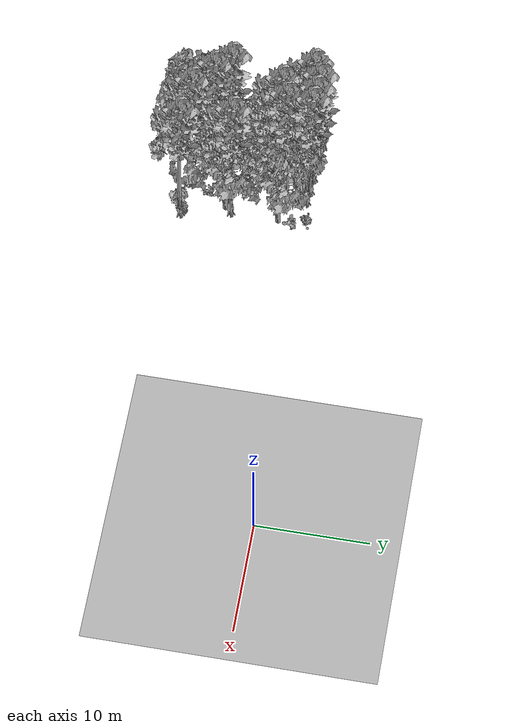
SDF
<sdf version="1.7">
 <world name="default">
  <model name="ground_plane">
   <static>1</static>
   <link name="link">
    <collision name="collision">
     <pose>-50 0 0 0 -0 0</pose>
     <geometry><plane><normal>0 0 1</normal><size>80 80</size></plane></geometry>
     <surface><contact><ode><min_depth>0.01</min_depth><max_vel>0</max_vel></ode></contact></surface>
    </collision>
    <visual name="grass">
     <cast_shadows>0</cast_shadows>
     <geometry>
      <mesh>
       <scale>0.46714285714285714 0.46714285714285714 0.1</scale>
       <uri>file://grass_plane/meshes/grass_plane.dae</uri>
      </mesh>
     </geometry>
    </visual>
   </link>
  </model>
  <model name="Tree 24">
   <static>1</static>
   <pose>-32.78907897571921 -0.9774051345075847 0 1.57079 -0 0</pose>
   <link name="link">
    <collision name="collision">
     <geometry><mesh><scale>3.5 5 3.5</scale><uri>model://tree_9/meshes/tree_9.obj</uri></mesh></geometry>
    </collision>
    <visual name="visual">
     <geometry><mesh><scale>3.5 5 3.5</scale><uri>model://tree_9/meshes/tree_9.obj</uri></mesh></geometry>
    </visual>
   </link>
  </model>
  <model name="Tree 53">
   <static>1</static>
   <pose>-32.948431894712336 -3.2336883667602123 0 1.57079 -0 0</pose>
   <link name="link">
    <collision name="collision">
     <geometry><mesh><scale>3.5 5 3.5</scale><uri>model://tree_9/meshes/tree_9.obj</uri></mesh></geometry>
    </collision>
    <visual name="visual">
     <geometry><mesh><scale>3.5 5 3.5</scale><uri>model://tree_9/meshes/tree_9.obj</uri></mesh></geometry>
    </visual>
   </link>
  </model>
  <model name="Tree 88">
   <static>1</static>
   <pose>-34.96741595532637 -9.925685961240866 0 1.57079 -0 0</pose>
   <link name="link">
    <collision name="collision">
     <geometry><mesh><scale>3.5 5 3.5</scale><uri>model://tree_9/meshes/tree_9.obj</uri></mesh></geometry>
    </collision>
    <visual name="visual">
     <geometry><mesh><scale>3.5 5 3.5</scale><uri>model://tree_9/meshes/tree_9.obj</uri></mesh></geometry>
    </visual>
   </link>
  </model>
  <model name="Tree 96">
   <static>1</static>
   <pose>-36.615596813734214 -1.460859834801873 0 1.57079 -0 0</pose>
   <link name="link">
    <collision name="collision">
     <geometry><mesh><scale>3.5 5 3.5</scale><uri>model://tree_9/meshes/tree_9.obj</uri></mesh></geometry>
    </collision>
    <visual name="visual">
     <geometry><mesh><scale>3.5 5 3.5</scale><uri>model://tree_9/meshes/tree_9.obj</uri></mesh></geometry>
    </visual>
   </link>
  </model>
  <model name="Tree 98">
   <static>1</static>
   <pose>-30.809204679955414 -8.049956116019779 0 1.57079 -0 0</pose>
   <link name="link">
    <collision name="collision">
     <geometry><mesh><scale>3.5 5 3.5</scale><uri>model://tree_2/meshes/tree_2.obj</uri></mesh></geometry>
    </collision>
    <visual name="visual">
     <geometry><mesh><scale>3.5 5 3.5</scale><uri>model://tree_2/meshes/tree_2.obj</uri></mesh></geometry>
    </visual>
   </link>
  </model>
  <model name="Tree 141">
   <static>1</static>
   <pose>-30.249612718079163 -3.16590466005146 0 1.57079 -0 0</pose>
   <link name="link">
    <collision name="collision">
     <geometry><mesh><scale>3.5 5 3.5</scale><uri>model://tree_2/meshes/tree_2.obj</uri></mesh></geometry>
    </collision>
    <visual name="visual">
     <geometry><mesh><scale>3.5 5 3.5</scale><uri>model://tree_2/meshes/tree_2.obj</uri></mesh></geometry>
    </visual>
   </link>
  </model>
  <model name="Tree 225">
   <static>1</static>
   <pose>-30.596620672319034 -7.553012206818281 0 1.57079 -0 0</pose>
   <link name="link">
    <collision name="collision">
     <geometry><mesh><scale>3.5 5 3.5</scale><uri>model://tree_9/meshes/tree_9.obj</uri></mesh></geometry>
    </collision>
    <visual name="visual">
     <geometry><mesh><scale>3.5 5 3.5</scale><uri>model://tree_9/meshes/tree_9.obj</uri></mesh></geometry>
    </visual>
   </link>
  </model>
  <model name="Tree 228">
   <static>1</static>
   <pose>-34.61759037420846 -4.364636212676402 0 1.57079 -0 0</pose>
   <link name="link">
    <collision name="collision">
     <geometry><mesh><scale>3.5 5 3.5</scale><uri>model://tree_2/meshes/tree_2.obj</uri></mesh></geometry>
    </collision>
    <visual name="visual">
     <geometry><mesh><scale>3.5 5 3.5</scale><uri>model://tree_2/meshes/tree_2.obj</uri></mesh></geometry>
    </visual>
   </link>
  </model>
  <model name="Tree 252">
   <static>1</static>
   <pose>-37.66335102691127 -11.834819009823239 0 1.57079 -0 0</pose>
   <link name="link">
    <collision name="collision">
     <geometry><mesh><scale>3.5 5 3.5</scale><uri>model://tree_2/meshes/tree_2.obj</uri></mesh></geometry>
    </collision>
    <visual name="visual">
     <geometry><mesh><scale>3.5 5 3.5</scale><uri>model://tree_2/meshes/tree_2.obj</uri></mesh></geometry>
    </visual>
   </link>
  </model>
  <model name="Tree 264">
   <static>1</static>
   <pose>-35.34349354484722 -0.7693751763926286 0 1.57079 -0 0</pose>
   <link name="link">
    <collision name="collision">
     <geometry><mesh><scale>3.5 5 3.5</scale><uri>model://tree_9/meshes/tree_9.obj</uri></mesh></geometry>
    </collision>
    <visual name="visual">
     <geometry><mesh><scale>3.5 5 3.5</scale><uri>model://tree_9/meshes/tree_9.obj</uri></mesh></geometry>
    </visual>
   </link>
  </model>
  <model name="Tree 367">
   <static>1</static>
   <pose>-36.05992731539248 -8.576572158277127 0 1.57079 -0 0</pose>
   <link name="link">
    <collision name="collision">
     <geometry><mesh><scale>3.5 5 3.5</scale><uri>model://tree_9/meshes/tree_9.obj</uri></mesh></geometry>
    </collision>
    <visual name="visual">
     <geometry><mesh><scale>3.5 5 3.5</scale><uri>model://tree_9/meshes/tree_9.obj</uri></mesh></geometry>
    </visual>
   </link>
  </model>
  <model name="Tree 438">
   <static>1</static>
   <pose>-34.48954136047521 -3.9008382573796325 0 1.57079 -0 0</pose>
   <link name="link">
    <collision name="collision">
     <geometry><mesh><scale>3.5 5 3.5</scale><uri>model://tree_9/meshes/tree_9.obj</uri></mesh></geometry>
    </collision>
    <visual name="visual">
     <geometry><mesh><scale>3.5 5 3.5</scale><uri>model://tree_9/meshes/tree_9.obj</uri></mesh></geometry>
    </visual>
   </link>
  </model>
  <model name="Tree 450">
   <static>1</static>
   <pose>-34.105948884221675 -2.2054219615684616 0 1.57079 -0 0</pose>
   <link name="link">
    <collision name="collision">
     <geometry><mesh><scale>3.5 5 3.5</scale><uri>model://tree_2/meshes/tree_2.obj</uri></mesh></geometry>
    </collision>
    <visual name="visual">
     <geometry><mesh><scale>3.5 5 3.5</scale><uri>model://tree_2/meshes/tree_2.obj</uri></mesh></geometry>
    </visual>
   </link>
  </model>
  <model name="Tree 459">
   <static>1</static>
   <pose>-32.97218296455982 -11.547693213624708 0 1.57079 -0 0</pose>
   <link name="link">
    <collision name="collision">
     <geometry><mesh><scale>3.5 5 3.5</scale><uri>model://tree_9/meshes/tree_9.obj</uri></mesh></geometry>
    </collision>
    <visual name="visual">
     <geometry><mesh><scale>3.5 5 3.5</scale><uri>model://tree_9/meshes/tree_9.obj</uri></mesh></geometry>
    </visual>
   </link>
  </model>
  <model name="Tree 465">
   <static>1</static>
   <pose>-33.9727536424379 -0.8378579799753396 0 1.57079 -0 0</pose>
   <link name="link">
    <collision name="collision">
     <geometry><mesh><scale>3.5 5 3.5</scale><uri>model://tree_9/meshes/tree_9.obj</uri></mesh></geometry>
    </collision>
    <visual name="visual">
     <geometry><mesh><scale>3.5 5 3.5</scale><uri>model://tree_9/meshes/tree_9.obj</uri></mesh></geometry>
    </visual>
   </link>
  </model>
  <model name="Tree 503">
   <static>1</static>
   <pose>-29.7086476843005 -12.009322614301077 0 1.57079 -0 0</pose>
   <link name="link">
    <collision name="collision">
     <geometry><mesh><scale>3.5 5 3.5</scale><uri>model://tree_9/meshes/tree_9.obj</uri></mesh></geometry>
    </collision>
    <visual name="visual">
     <geometry><mesh><scale>3.5 5 3.5</scale><uri>model://tree_9/meshes/tree_9.obj</uri></mesh></geometry>
    </visual>
   </link>
  </model>
  <model name="Bush 7">
   <static>1</static>
   <pose>-30.298673627103096 -0.6578516883559189 0 1.57079 -0 0</pose>
   <link name="link">
    <collision name="collision">
     <geometry><mesh><scale>2 2 2</scale><uri>model://bush_4/meshes/bush_4.obj</uri></mesh></geometry>
     <surface><contact><collide_without_contact>false</collide_without_contact></contact></surface>
    </collision>
    <visual name="visual">
     <geometry><mesh><scale>2 2 2</scale><uri>model://bush_4/meshes/bush_4.obj</uri></mesh></geometry>
    </visual>
   </link>
  </model>
  <model name="Bush 17">
   <static>1</static>
   <pose>-33.81973562503699 -4.658680839403189 0 1.57079 -0 0</pose>
   <link name="link">
    <collision name="collision">
     <geometry><mesh><scale>2 2 2</scale><uri>model://bush_4/meshes/bush_4.obj</uri></mesh></geometry>
     <surface><contact><collide_without_contact>false</collide_without_contact></contact></surface>
    </collision>
    <visual name="visual">
     <geometry><mesh><scale>2 2 2</scale><uri>model://bush_4/meshes/bush_4.obj</uri></mesh></geometry>
    </visual>
   </link>
  </model>
  <model name="Bush 66">
   <static>1</static>
   <pose>-32.25714257517197 -9.838660090815942 0 1.57079 -0 0</pose>
   <link name="link">
    <collision name="collision">
     <geometry><mesh><scale>2 2 2</scale><uri>model://bush_2/meshes/bush_2.obj</uri></mesh></geometry>
     <surface><contact><collide_without_contact>false</collide_without_contact></contact></surface>
    </collision>
    <visual name="visual">
     <geometry><mesh><scale>2 2 2</scale><uri>model://bush_2/meshes/bush_2.obj</uri></mesh></geometry>
    </visual>
   </link>
  </model>
  <model name="Bush 174">
   <static>1</static>
   <pose>-29.455505226817834 -11.548472620324493 0 1.57079 -0 0</pose>
   <link name="link">
    <collision name="collision">
     <geometry><mesh><scale>2 2 2</scale><uri>model://bush_5/meshes/bush_5.obj</uri></mesh></geometry>
     <surface><contact><collide_without_contact>false</collide_without_contact></contact></surface>
    </collision>
    <visual name="visual">
     <geometry><mesh><scale>2 2 2</scale><uri>model://bush_5/meshes/bush_5.obj</uri></mesh></geometry>
    </visual>
   </link>
  </model>
  <model name="Bush 420">
   <static>1</static>
   <pose>-30.654063985579988 -12.399175831450584 0 1.57079 -0 0</pose>
   <link name="link">
    <collision name="collision">
     <geometry><mesh><scale>2 2 2</scale><uri>model://bush_1/meshes/bush_1.obj</uri></mesh></geometry>
     <surface><contact><collide_without_contact>false</collide_without_contact></contact></surface>
    </collision>
    <visual name="visual">
     <geometry><mesh><scale>2 2 2</scale><uri>model://bush_1/meshes/bush_1.obj</uri></mesh></geometry>
    </visual>
   </link>
  </model>
  <model name="Bush 503">
   <static>1</static>
   <pose>-38.36225134747954 -12.08550711647943 0 1.57079 -0 0</pose>
   <link name="link">
    <collision name="collision">
     <geometry><mesh><scale>2 2 2</scale><uri>model://bush_2/meshes/bush_2.obj</uri></mesh></geometry>
     <surface><contact><collide_without_contact>false</collide_without_contact></contact></surface>
    </collision>
    <visual name="visual">
     <geometry><mesh><scale>2 2 2</scale><uri>model://bush_2/meshes/bush_2.obj</uri></mesh></geometry>
    </visual>
   </link>
  </model>
  <model name="Bush 534">
   <static>1</static>
   <pose>-29.592291228820265 -1.8696506518407148 0 1.57079 -0 0</pose>
   <link name="link">
    <collision name="collision">
     <geometry><mesh><scale>2 2 2</scale><uri>model://bush_0/meshes/bush_0.obj</uri></mesh></geometry>
     <surface><contact><collide_without_contact>false</collide_without_contact></contact></surface>
    </collision>
    <visual name="visual">
     <geometry><mesh><scale>2 2 2</scale><uri>model://bush_0/meshes/bush_0.obj</uri></mesh></geometry>
    </visual>
   </link>
  </model>
  <model name="Bush 536">
   <static>1</static>
   <pose>-37.37777475026922 -1.542459558957674 0 1.57079 -0 0</pose>
   <link name="link">
    <collision name="collision">
     <geometry><mesh><scale>2 2 2</scale><uri>model://bush_1/meshes/bush_1.obj</uri></mesh></geometry>
     <surface><contact><collide_without_contact>false</collide_without_contact></contact></surface>
    </collision>
    <visual name="visual">
     <geometry><mesh><scale>2 2 2</scale><uri>model://bush_1/meshes/bush_1.obj</uri></mesh></geometry>
    </visual>
   </link>
  </model>
 </world>
</sdf>
